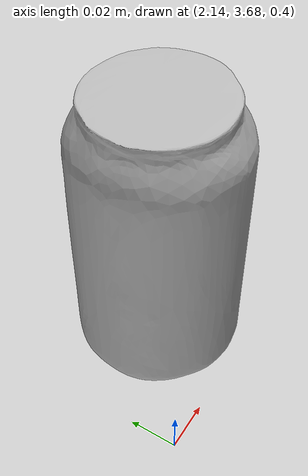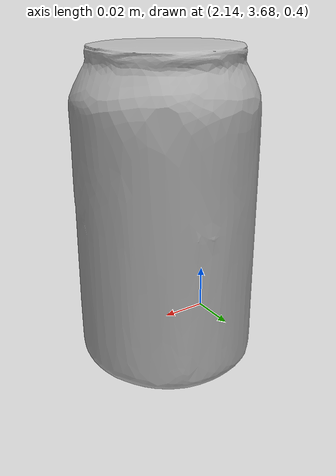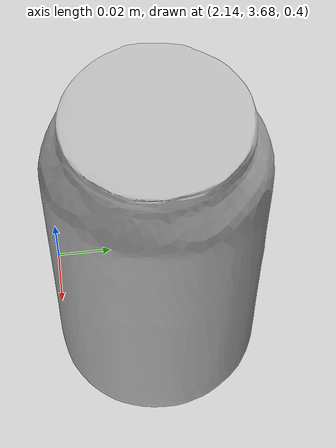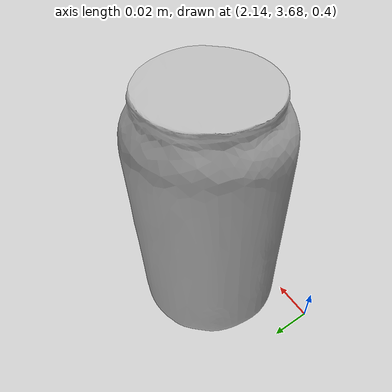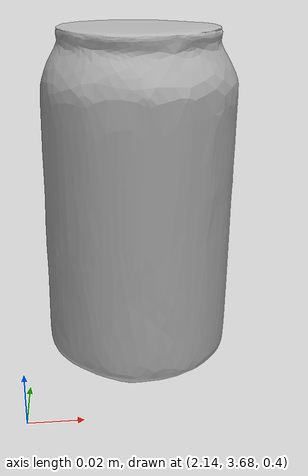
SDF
<?xml version="1.0"?>
<sdf version="1.6">
  <world name="default">
    <plugin name="gazebo_ros_state" filename="libgazebo_ros_state.so">
      <ros>
        <namespace>/spwnd_obj</namespace>
        <remapping>model_states:=model_states_demo</remapping>
        <remapping>link_states:=link_states_demo</remapping>
      </ros>

      <update_rate>1.0</update_rate>
    </plugin>

    <include>
      <uri>model://ground_plane</uri>
    </include>
    <include>
      <uri>model://sun</uri>
    </include>

    <model name="coke_can_robot">
       <include>
    <uri>model://coke_can2</uri>

    </include>
    </model>

    <model name="coke_can">
       <include>
    <uri>model://coke_can2</uri>

    </include>
    </model>

  </world>
</sdf>

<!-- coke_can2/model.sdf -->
<sdf version="1.5">
  <model name="coke_can2">
 <pose>2.186415 3.718465 0.224409 0 0 0</pose>
    <link name="link">
      <inertial>
        <pose>0 0 0.06 0 0 0</pose>
        <mass>0.390</mass>
        <inertia>
          <ixx>0</ixx>
          <ixy>0</ixy>
          <ixz>0</ixz>
          <iyy>0</iyy>
          <iyz>0</iyz>
          <izz>0</izz>
        </inertia>
      </inertial>
      <collision name="collision">
        <geometry>
          <mesh>
            <uri>model://coke_can2/meshes/coke_can2.dae</uri>
          </mesh>
        </geometry>
        <surface>
          <friction>
            <ode>
              <mu>1.0</mu>
              <mu2>1.0</mu2>
            </ode>
          </friction>
          <contact>
            <ode>
              <kp>10000000.0</kp>
              <kd>1.0</kd>
              <min_depth>0.001</min_depth>
              <max_vel>0.1</max_vel>
            </ode>
          </contact>
        </surface>
      </collision>
      <visual name="visual">
        <geometry>
          <mesh>
            <uri>model://coke_can2/meshes/coke_can2.dae</uri>
          </mesh>
        </geometry>
      </visual>
    </link>
  </model>
</sdf>
